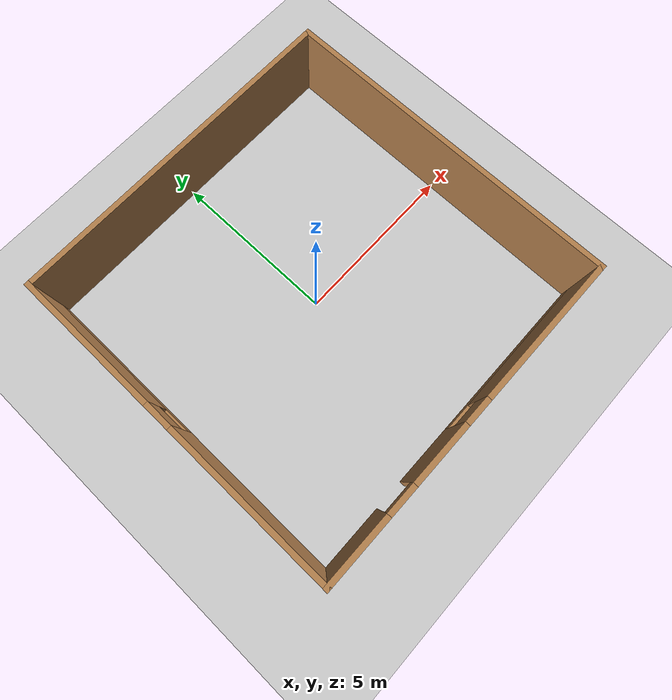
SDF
<sdf version="1.7">
 <world name="default">
  <light name="sun" type="directional">
   <pose>0 0 10 0 -0 0</pose>
   <diffuse>0.8 0.8 0.8 1</diffuse>
   <specular>0.2 0.2 0.2 1</specular>
   <attenuation>
    <range>1000</range>
    <constant>0.9</constant>
    <linear>0.01</linear>
    <quadratic>0.001</quadratic>
   </attenuation>
   <direction>-0.5 0.1 -0.9</direction>
   <spot><inner_angle>0</inner_angle><outer_angle>0</outer_angle><falloff>0</falloff></spot>
  </light>
  <model name="ground_plane">
   <static>1</static>
   <link name="link">
    <collision name="collision">
     <geometry><plane><normal>0 0 1</normal><size>100 100</size></plane></geometry>
     <surface>
      <contact><collide_bitmask>65535</collide_bitmask></contact>
      <friction><ode><mu>100</mu><mu2>50</mu2></ode></friction>
     </surface>
    </collision>
    <visual name="visual">
     <cast_shadows>0</cast_shadows>
     <geometry><plane><normal>0 0 1</normal><size>100 100</size></plane></geometry>
     <material>
      <script><uri>file://media/materials/scripts/gazebo.material</uri><name>Gazebo/Grey</name></script>
     </material>
    </visual>
   </link>
  </model>
  <gravity>0 0 -9.8</gravity>
  <magnetic_field>6e-06 2.3e-05 -4.2e-05</magnetic_field>
  <atmosphere type="adiabatic"/>
  <physics type="ode">
   <max_step_size>0.001</max_step_size>
   <real_time_factor>1</real_time_factor>
   <real_time_update_rate>1000</real_time_update_rate>
  </physics>
  <scene><ambient>0.4 0.4 0.4 1</ambient><background>0.7 0.7 0.7 1</background><shadows>1</shadows></scene>
  <audio><device>default</device></audio>
  <spherical_coordinates>
   <surface_model>EARTH_WGS84</surface_model>
   <latitude_deg>0</latitude_deg>
   <longitude_deg>0</longitude_deg>
   <elevation>0</elevation>
   <heading_deg>0</heading_deg>
  </spherical_coordinates>
  <model name="Untitled">
   <pose>0.04044 0.035426 0 0 -0 0</pose>
   <link name="Wall_1">
    <pose>-0 -5 0 0 -0 0</pose>
    <visual name="Wall_1_Visual_0">
     <pose>-4.02385 0 1.25 0 -0 0</pose>
     <geometry><box><size>2.1023 0.15 2.5</size></box></geometry>
     <material>
      <script><uri>file://media/materials/scripts/gazebo.material</uri><name>Gazebo/Wood</name></script>
      <ambient>0.760784 0.662745 0.627451 1</ambient>
     </material>
     <meta><layer>0</layer></meta>
    </visual>
    <collision name="Wall_1_Collision_0">
     <geometry><box><size>2.1023 0.15 2.5</size></box></geometry>
     <pose>-4.02385 0 1.25 0 -0 0</pose>
    </collision>
    <visual name="Wall_1_Visual_1">
     <pose>-1.15104 0 1.25 0 -0 0</pose>
     <geometry><box><size>1.84331 0.15 2.5</size></box></geometry>
     <material>
      <script><uri>file://media/materials/scripts/gazebo.material</uri><name>Gazebo/Wood</name></script>
      <ambient>0.760784 0.662745 0.627451 1</ambient>
     </material>
     <meta><layer>0</layer></meta>
    </visual>
    <collision name="Wall_1_Collision_1">
     <geometry><box><size>1.84331 0.15 2.5</size></box></geometry>
     <pose>-1.15104 0 1.25 0 -0 0</pose>
    </collision>
    <visual name="Wall_1_Visual_2">
     <pose>2.42281 0 0.25 0 -0 0</pose>
     <geometry><box><size>5.30439 0.15 0.5</size></box></geometry>
     <material>
      <script><uri>file://media/materials/scripts/gazebo.material</uri><name>Gazebo/Wood</name></script>
      <ambient>0.760784 0.662745 0.627451 1</ambient>
     </material>
     <meta><layer>0</layer></meta>
    </visual>
    <collision name="Wall_1_Collision_2">
     <geometry><box><size>5.30439 0.15 0.5</size></box></geometry>
     <pose>2.42281 0 0.25 0 -0 0</pose>
    </collision>
    <visual name="Wall_1_Visual_3">
     <pose>2.82281 0 1.5 0 -0 0</pose>
     <geometry><box><size>4.50439 0.15 2</size></box></geometry>
     <material>
      <script><uri>file://media/materials/scripts/gazebo.material</uri><name>Gazebo/Wood</name></script>
      <ambient>0.760784 0.662745 0.627451 1</ambient>
     </material>
     <meta><layer>0</layer></meta>
    </visual>
    <collision name="Wall_1_Collision_3">
     <geometry><box><size>4.50439 0.15 2</size></box></geometry>
     <pose>2.82281 0 1.5 0 -0 0</pose>
    </collision>
    <visual name="Wall_1_Visual_4">
     <pose>0.170613 0 1.9 0 -0 0</pose>
     <geometry><box><size>0.8 0.15 1.2</size></box></geometry>
     <material>
      <script><uri>file://media/materials/scripts/gazebo.material</uri><name>Gazebo/Wood</name></script>
      <ambient>0.760784 0.662745 0.627451 1</ambient>
     </material>
     <meta><layer>0</layer></meta>
    </visual>
    <collision name="Wall_1_Collision_4">
     <geometry><box><size>0.8 0.15 1.2</size></box></geometry>
     <pose>0.170613 0 1.9 0 -0 0</pose>
    </collision>
    <visual name="Wall_1_Visual_5">
     <pose>-2.5227 0 2.25 0 -0 0</pose>
     <geometry><box><size>0.9 0.15 0.5</size></box></geometry>
     <material>
      <script><uri>file://media/materials/scripts/gazebo.material</uri><name>Gazebo/Wood</name></script>
      <ambient>0.760784 0.662745 0.627451 1</ambient>
     </material>
     <meta><layer>0</layer></meta>
    </visual>
    <collision name="Wall_1_Collision_5">
     <geometry><box><size>0.9 0.15 0.5</size></box></geometry>
     <pose>-2.5227 0 2.25 0 -0 0</pose>
    </collision>
   </link>
   <link name="Wall_3">
    <collision name="Wall_3_Collision">
     <geometry><box><size>10.15 0.15 2.5</size></box></geometry>
     <pose>0 0 1.25 0 -0 0</pose>
    </collision>
    <visual name="Wall_3_Visual">
     <pose>0 0 1.25 0 -0 0</pose>
     <geometry><box><size>10.15 0.15 2.5</size></box></geometry>
     <material>
      <script><uri>file://media/materials/scripts/gazebo.material</uri><name>Gazebo/Wood</name></script>
      <ambient>1 1 1 1</ambient>
     </material>
     <meta><layer>0</layer></meta>
    </visual>
    <pose>5 0 0 0 -0 1.5708</pose>
   </link>
   <link name="Wall_5">
    <pose>-5 0 0 0 -0 1.5708</pose>
    <visual name="Wall_5_Visual_0">
     <pose>-2.55373 0 1.25 0 -0 0</pose>
     <geometry><box><size>5.04254 0.15 2.5</size></box></geometry>
     <material>
      <script><uri>file://media/materials/scripts/gazebo.material</uri><name>Gazebo/Wood</name></script>
      <ambient>1 1 1 1</ambient>
     </material>
     <meta><layer>0</layer></meta>
    </visual>
    <collision name="Wall_5_Collision_0">
     <geometry><box><size>5.04254 0.15 2.5</size></box></geometry>
     <pose>-2.55373 0 1.25 0 -0 0</pose>
    </collision>
    <visual name="Wall_5_Visual_1">
     <pose>2.52127 0 0.25 0 -0 0</pose>
     <geometry><box><size>5.10746 0.15 0.5</size></box></geometry>
     <material>
      <script><uri>file://media/materials/scripts/gazebo.material</uri><name>Gazebo/Wood</name></script>
      <ambient>1 1 1 1</ambient>
     </material>
     <meta><layer>0</layer></meta>
    </visual>
    <collision name="Wall_5_Collision_1">
     <geometry><box><size>5.10746 0.15 0.5</size></box></geometry>
     <pose>2.52127 0 0.25 0 -0 0</pose>
    </collision>
    <visual name="Wall_5_Visual_2">
     <pose>2.92127 0 1.5 0 -0 0</pose>
     <geometry><box><size>4.30746 0.15 2</size></box></geometry>
     <material>
      <script><uri>file://media/materials/scripts/gazebo.material</uri><name>Gazebo/Wood</name></script>
      <ambient>1 1 1 1</ambient>
     </material>
     <meta><layer>0</layer></meta>
    </visual>
    <collision name="Wall_5_Collision_2">
     <geometry><box><size>4.30746 0.15 2</size></box></geometry>
     <pose>2.92127 0 1.5 0 -0 0</pose>
    </collision>
    <visual name="Wall_5_Visual_3">
     <pose>0.367541 0 1.9 0 -0 0</pose>
     <geometry><box><size>0.8 0.15 1.2</size></box></geometry>
     <material>
      <script><uri>file://media/materials/scripts/gazebo.material</uri><name>Gazebo/Wood</name></script>
      <ambient>1 1 1 1</ambient>
     </material>
     <meta><layer>0</layer></meta>
    </visual>
    <collision name="Wall_5_Collision_3">
     <geometry><box><size>0.8 0.15 1.2</size></box></geometry>
     <pose>0.367541 0 1.9 0 -0 0</pose>
    </collision>
   </link>
   <link name="Wall_7">
    <collision name="Wall_7_Collision">
     <geometry><box><size>10 0.15 2.5</size></box></geometry>
     <pose>0 0 1.25 0 -0 0</pose>
    </collision>
    <visual name="Wall_7_Visual">
     <pose>0 0 1.25 0 -0 0</pose>
     <geometry><box><size>10 0.15 2.5</size></box></geometry>
     <material>
      <script><uri>file://media/materials/scripts/gazebo.material</uri><name>Gazebo/Wood</name></script>
      <ambient>1 1 1 1</ambient>
     </material>
     <meta><layer>0</layer></meta>
    </visual>
    <pose>0.075 5 0 0 -0 3.14159</pose>
   </link>
   <static>1</static>
  </model>
 </world>
</sdf>
